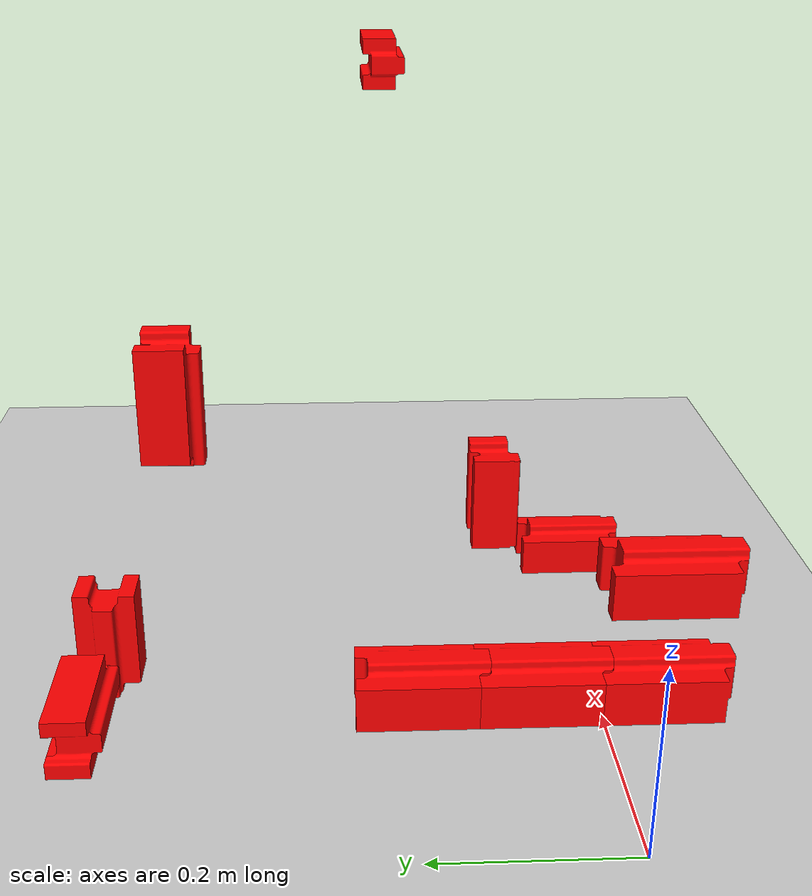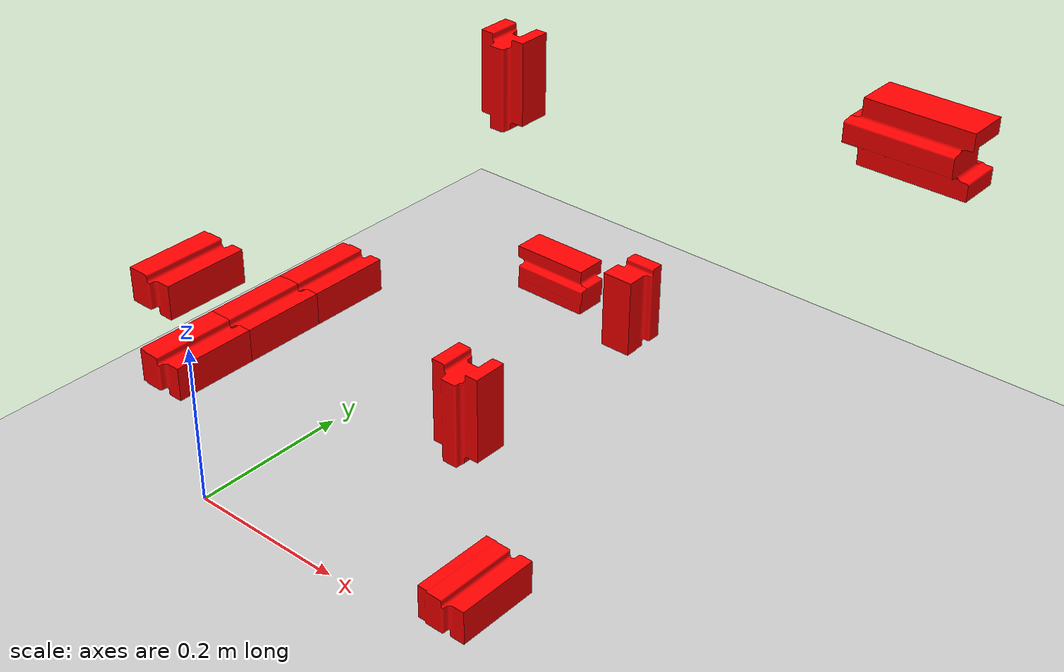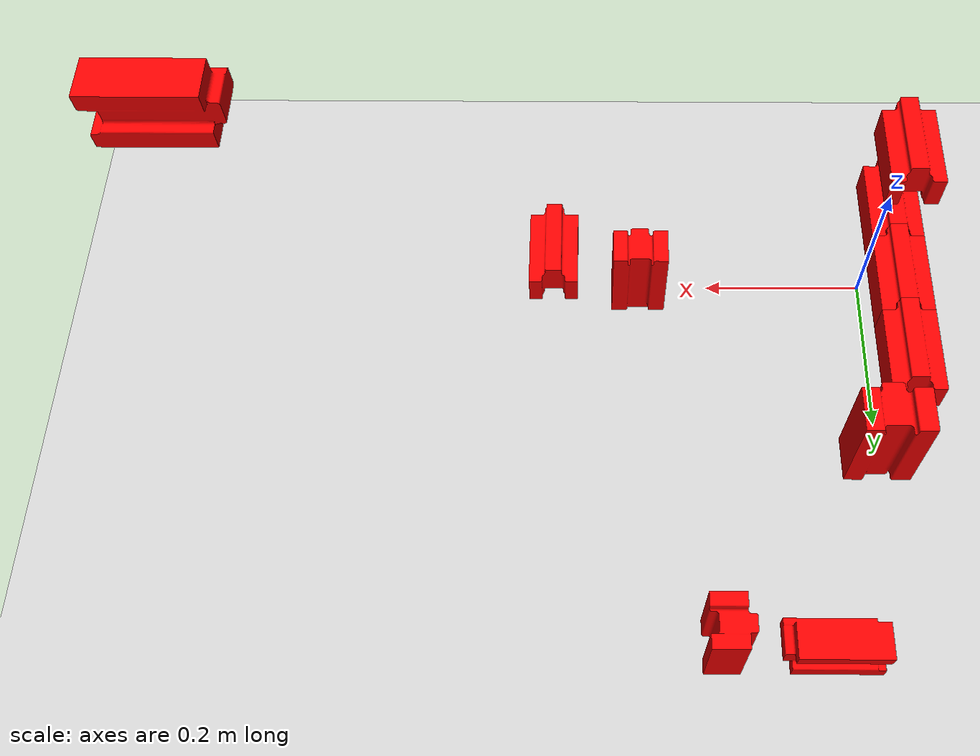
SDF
<sdf version="1.7">
 <world name="basic_world">
  <gravity>0.0 0.0 -9.8</gravity>
  <scene><ambient>0.4 0.4 0.4 1</ambient><background>0.7 0.7 0.7 1</background><shadows>true</shadows></scene>
  <light type="directional" name="sun">
   <pose>0 0 10 0 0 0</pose>
   <diffuse>0.8 0.8 0.8 1</diffuse>
   <specular>0.2 0.2 0.2 1</specular>
   <attenuation>
    <range>1000</range>
    <constant>0.9</constant>
    <linear>0.01</linear>
    <quadratic>0.001</quadratic>
   </attenuation>
   <direction>-0.5 0.1 -0.9</direction>
  </light>
  <model name="ground_plane">
   <static>true</static>
   <link name="link">
    <collision name="collision"><geometry><plane><normal>0 0 1</normal></plane></geometry></collision>
    <visual name="visual">
     <geometry><plane><normal>0 0 1</normal><size>100 100</size></plane></geometry>
     <material>
      <ambient>0.8 0.8 0.8 1</ambient>
      <diffuse>0.8 0.8 0.8 1</diffuse>
      <specular>0.8 0.8 0.8 1</specular>
     </material>
    </visual>
   </link>
  </model>
  <include><name>brick_1</name><uri>model://brick</uri><pose>0 0 0.2 -1.5708 0 0</pose></include>
  <include><name>brick_2</name><uri>model://brick</uri><pose>0 0.1 0.2 -1.5708 0 0</pose></include>
  <include><name>brick_3</name><uri>model://brick</uri><pose>0 0.2 0.2 -1.5708 0 0</pose></include>
  <include><name>brick_4</name><uri>model://brick</uri><pose>0 0 0.3 -1.5708 0 0</pose></include>
  <include><name>brick_5</name><uri>model://brick</uri><pose>0.4 0 0.1 -1.5708 0 0</pose></include>
  <include><name>brick_6</name><uri>model://brick</uri><pose>0.3 0.1 0.2 0 0 0</pose></include>
  <include><name>brick_7</name><uri>model://brick</uri><pose>0.2 0.5 0.1 0 0 -1.5708</pose></include>
  <include><name>brick_8</name><uri>model://brick</uri><pose>0.1 0.5 0.1 0 -1.5708 0</pose></include>
  <include><name>brick_9</name><uri>model://brick</uri><pose>0.7 0.2 0.6 0 1.5708 0</pose></include>
  <include><name>brick_10</name><uri>model://brick</uri><pose>0.1 0.4 0.4 0 0 0</pose></include>
 </world>
</sdf>

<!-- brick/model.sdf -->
<sdf version="1.7">

  <model name="brick">
    <pose>0 0 0 0 0 0</pose>
    <static>false</static>
    <link name="link">
      <inertial>
        <mass>0.3</mass>
        <inertia>
          <ixx>0.00029</ixx>
          <ixy>0.0</ixy>
          <ixz>0.0</ixz>
          <iyx>0.0</iyx>
          <iyy>0.00034</iyy>
          <iyz>0.0</iyz>
          <izx>0.0</izx>
          <izy>0.0</izy>
          <izz>0.00013</izz>
        </inertia>
      </inertial>
      <collision name="collision">
        <pose>-0.03 -0.02 -0.05 0.0 0.0 0.0</pose>
        <geometry>
            <mesh>
                <scale>0.001 0.001 0.001</scale>
                <uri>model://brick/meshes/00_InterlockingBrick_Rev.00.STL</uri>
            </mesh>
        </geometry>
      </collision>
      <visual name="visual">
        <pose>-0.03 -0.02 -0.05 0.0 0.0 0.0</pose>
        <geometry>
            <mesh>
                <scale>0.001 0.001 0.001</scale>
                <uri>model://brick/meshes/00_InterlockingBrick_Rev.00.STL</uri>
            </mesh>
        </geometry>
        <material>
            <ambient>1.0 0.0 0.0 1.0</ambient>
            <diffuse>1.0 0.0 0.0 1.0</diffuse>
            <specular>1.0 0.0 0.0 1.0</specular>
        </material>
      </visual>
    </link>
  </model>
</sdf>
